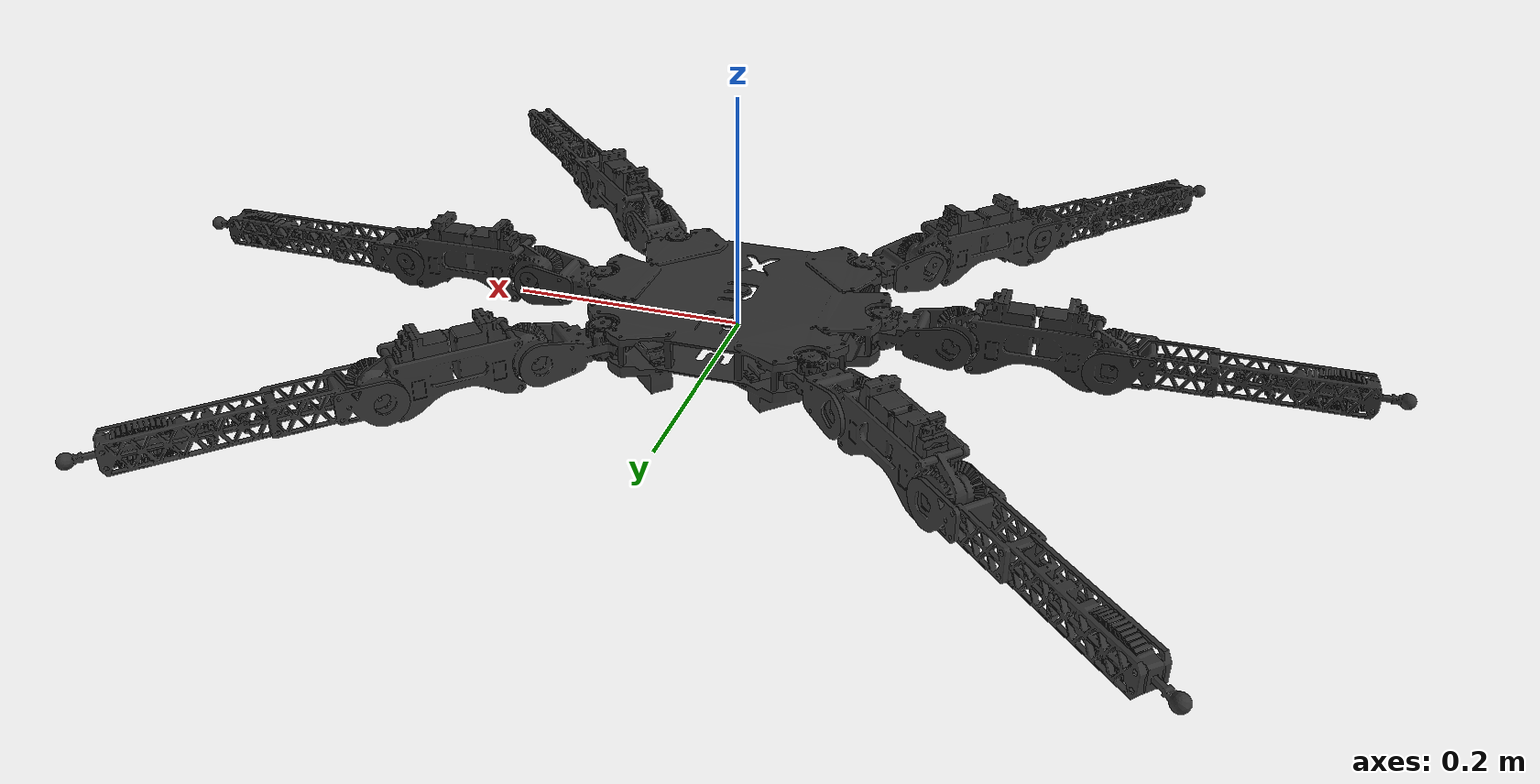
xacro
<?xml version="1.0"?>
<robot name="hexapod" xmlns:xacro="http://ros.org/wiki/xacro">
    <!-- MoveIt configuration for real hardware interface -->
    <!-- This file is optimized for physical robot control -->
    <!-- Used by demo.launch.py when hardware mode is selected -->
    <!-- Default fake_hardware=true allows safe MoveIt testing without real robot -->

    <!-- Robot naming and identification -->
    <xacro:arg name="prefix" default="" />

    <!-- Hardware interface selection for real robot -->
    <xacro:arg name="use_gazebo" default="false" />
    <!-- Default to fake hardware for safe MoveIt algorithm testing -->
    <xacro:arg name="use_fake_hardware" default="true" />
    <xacro:arg name="fake_sensor_commands" default="false" />

    <!-- ESP32 communication parameters for real hardware deployment -->
    <xacro:arg name="port_name" default="/dev/ttyUSB0" />
    <xacro:arg name="baud_rate" default="115200" />

    <!-- Include main hexapod definition from description package -->
    <xacro:include filename="$(find hexapod_description)/urdf/hexapod_ee.urdf.xacro" />

    <!-- Create hexapod robot for MoveIt hardware interface -->
    <xacro:hexapod_ee
        use_sim="true"
        prefix="$(arg prefix)"
        use_gazebo="$(arg use_gazebo)"
        use_fake_hardware="$(arg use_fake_hardware)"
        fake_sensor_commands="$(arg fake_sensor_commands)"
        port_name="$(arg port_name)"
        baud_rate="$(arg baud_rate)" />
</robot>

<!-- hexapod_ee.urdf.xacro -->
<robot name="hexapod" xmlns:xacro="http://ros.org/wiki/xacro">
  <xacro:macro name="hexapod_ee" params="use_sim prefix use_gazebo use_fake_hardware fake_sensor_commands port_name baud_rate">

    <!-- COMPONENT INCLUDES                                                -->
    <!-- Gazebo physics -->
    <xacro:include filename="$(find hexapod_description)/gazebo/hexapod.gazebo.xacro" />

    <!-- Robot structural components (legs, platform, joints) -->
    <xacro:include filename="$(find hexapod_description)/urdf/hexapod_leg_ee.urdf.xacro" />

    <!-- IMU sensor definition (currently unused) -->
    <xacro:include filename="$(find hexapod_description)/urdf/imu.urdf.xacro"/>

    <!-- ros2_control hardware interface configuration -->
    <xacro:include filename="$(find hexapod_description)/control/hexapod.ros2_control.xacro" />

    <!-- ROBOT STRUCTURE INSTANTIATION                                     -->
    <!-- Create complete robot structure with legs and platform -->
    <xacro:hexapod_leg_ee prefix="${prefix}"/>

    <!-- Apply Gazebo physics properties and transmissions -->
    <xacro:hexapod_gazebo prefix="${prefix}" />

    <!-- IMU sensor instantiation (commented out - not currently used) -->

    <!-- GAZEBO SIMULATION PLUGINS                                         -->
    <!-- ros2_control integration plugin for Gazebo -->
    <gazebo>
      <plugin filename="gz_ros2_control-system" name="gz_ros2_control::GazeboSimROS2ControlPlugin">
        <parameters>$(find hexapod_description)/control/controller_manager.yaml</parameters>
      </plugin>
    </gazebo>

    <!-- Touch/contact detection plugin for ground interaction -->
    <gazebo>
      <plugin filename="gz-sim-touchplugin-system"
        name="gz::sim::systems::TouchPlugin">
          <target>ground_plane</target>
          <namespace>tip</namespace>
          <time>0.001</time>
          <enabled>true</enabled>
      </plugin>
    </gazebo>

    <!-- Direct IMU sensor on base platform (alternative to macro) -->
    <gazebo reference="${prefix}base_link">
      <sensor name="imu_sensor" type="imu">
        <update_rate>1</update_rate>
        <always_on>true</always_on>
        <visualize>false</visualize>
        <topic>imu</topic>
      </sensor>
    </gazebo>

    <!-- CONTROL SYSTEM CONFIGURATION                                      -->
    <!-- ros2_control hardware interface with parameter selection -->
    <xacro:hexapod_ros2_control
        name="hexapod"
        initial_positions_file="$(find hexapod_description)/config/initial_positions.yaml"
        use_gazebo="${use_gazebo}"
        use_fake_hardware="${use_fake_hardware}"
        fake_sensor_commands="${fake_sensor_commands}"
        port_name="${port_name}"
        baud_rate="${baud_rate}" />
  </xacro:macro>
</robot>

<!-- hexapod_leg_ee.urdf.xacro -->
<robot xmlns:xacro="http://www.ros.org/wiki/xacro">
  <xacro:macro name="hexapod_leg_ee" params="prefix">

    <!-- PHYSICAL PROPERTIES AND CONSTRAINTS       -->

    <!-- Mass properties for each component -->
    <xacro:property name="platform_mass" value="0.8095" />
    <xacro:property name="up_section_mass" value="0.059" />
    <xacro:property name="mid_section_mass" value="0.1705" />
    <xacro:property name="down_section_mass" value="0.090" />
    <xacro:property name="tip_mass" value="0.001"/>

    <!-- Joint angle limits (radians) -->
    <xacro:property name="joint1_lower" value="-0.785398163"/>
    <xacro:property name="joint1_upper" value="0.785398163"/>
    <xacro:property name="joint2_lower" value="-1.047197551"/>
    <xacro:property name="joint2_upper" value="1.047197551"/>
    <xacro:property name="joint3_lower" value="-0.523598776"/>  <!-- -30° to 90° -->
    <xacro:property name="joint3_upper" value="1.570796327"/>

    <!-- Servo motor specifications -->
    <xacro:property name="joint1_effort" value="2.548"/>      <!-- Nm -->
    <xacro:property name="joint2_effort" value="1.911"/>
    <xacro:property name="joint3_effort" value="1.911"/>

    <xacro:property name="joint1_velocity" value="3.1"/>      <!-- rad/s -->
    <xacro:property name="joint2_velocity" value="4.1"/>
    <xacro:property name="joint3_velocity" value="4.1"/>

    <!-- Platform inertial properties -->
    <xacro:property name="platform_ixx" value="2.782630e-03"/>
    <xacro:property name="platform_ixy" value="3.151174e-07"/>
    <xacro:property name="platform_ixz" value="-3.746570e-07"/>
    <xacro:property name="platform_iyy" value="3.491645e-03"/>
    <xacro:property name="platform_iyz" value="8.425825e-06"/>
    <xacro:property name="platform_izz" value="5.824094e-03"/>

    <!-- End effector inertial properties -->
    <xacro:property name="tip_ixx" value="0.0000000144"/>
    <xacro:property name="tip_iyy" value="0.0000000144"/>
    <xacro:property name="tip_izz" value="0.0000000144"/>
    <xacro:property name="tip_ixy" value="0.0"/>
    <xacro:property name="tip_ixz" value="0.0"/>
    <xacro:property name="tip_iyz" value="0.0"/>

    <!-- LEG 1 - FRONT RIGHT                       -->

    <!-- Joint positions and orientations -->
    <xacro:property name="joint1_1_xyz" value="0.086185	0.0860902	0.0170504"/>
    <xacro:property name="joint1_1_axis" value="0	0	1"/>
    <xacro:property name="joint2_1_xyz" value="0.041059	0.0410588	0.0002496"/>
    <xacro:property name="joint2_1_axis" value="-0.707106781	0.707106781	0"/>
    <xacro:property name="joint3_1_xyz" value="0.085418	0.085419	0"/>
    <xacro:property name="joint3_1_axis" value="-0.707106781	0.707106781	0"/>
    <xacro:property name="joint4_1_xyz" value="0.150968	0.151062	0.004855"/>
    <xacro:property name="joint4_1_axis" value="0	0	0"/>

    <!-- Link visual origins and orientations -->
    <xacro:property name="link2_1_xyz" value="0.0136626	0.0135428	0.0000671"/>
    <xacro:property name="link2_1_rpy" value="0	0	0.7853981634"/>
    <xacro:property name="link3_1_xyz" value="0.04295	0.042401	0.0055591"/>
    <xacro:property name="link3_1_rpy" value="0	0	0.7853981634"/>
    <xacro:property name="link4_1_xyz" value="0.068436	0.068583	0.0042679"/>
    <xacro:property name="link4_1_rpy" value="0	0	0.7853981634"/>
    <xacro:property name="link5_1_xyz" value="0	0	0"/>
    <xacro:property name="link_tip_1_rpy" value="0 0 0.785398163"/>

    <!-- Inertial properties for leg 1 links -->
    <xacro:property name="upper_leg_1_ixx" value="3.192059e-05"/>
    <xacro:property name="upper_leg_1_ixy" value="-1.816964e-05"/>
    <xacro:property name="upper_leg_1_ixz" value="-1.971549e-07"/>
    <xacro:property name="upper_leg_1_iyy" value="3.172578e-05"/>
    <xacro:property name="upper_leg_1_iyz" value="-6.665934e-08"/>
    <xacro:property name="upper_leg_1_izz" value="5.413813e-05"/>

    <xacro:property name="mid_leg_1_ixx" value="1.872470e-04"/>
    <xacro:property name="mid_leg_1_ixy" value="-1.227141e-04"/>
    <xacro:property name="mid_leg_1_ixz" value="4.021989e-08"/>
    <xacro:property name="mid_leg_1_iyy" value="1.872811e-04"/>
    <xacro:property name="mid_leg_1_iyz" value="7.655518e-08"/>
    <xacro:property name="mid_leg_1_izz" value="2.854110e-04"/>

    <xacro:property name="lower_leg_1_ixx" value="1.914881e-04"/>
    <xacro:property name="lower_leg_1_ixy" value="-1.742340e-04"/>
    <xacro:property name="lower_leg_1_ixz" value="-8.359193e-06"/>
    <xacro:property name="lower_leg_1_iyy" value="1.914337e-04"/>
    <xacro:property name="lower_leg_1_iyz" value="-8.346770e-06"/>
    <xacro:property name="lower_leg_1_izz" value="3.656178e-04"/>

    <!-- LEG 2 - FRONT MIDDLE                      -->

    <xacro:property name="joint1_2_xyz" value="0.121845	0	0.0170504"/>
    <xacro:property name="joint1_2_axis" value="0	0	1"/>
    <xacro:property name="joint2_2_xyz" value="0.058105	-0.000094711	0.0002496"/>
    <xacro:property name="joint2_2_axis" value="0	1	0"/>
    <xacro:property name="joint3_2_xyz" value="0.120802	0.000000002	0"/>
    <xacro:property name="joint3_2_axis" value="0	1	0"/>
    <xacro:property name="joint4_2_xyz" value="0.213498	-0.000094709	0.004855"/>
    <xacro:property name="joint4_2_axis" value="0	0	0"/>

    <xacro:property name="link2_2_xyz" value="0.01929	0	0.0001208"/>
    <xacro:property name="link2_2_rpy" value="0	0	0"/>
    <xacro:property name="link3_2_xyz" value="0.060281	0.000094711	0.0055591"/>
    <xacro:property name="link3_2_rpy" value="0	0	0"/>
    <xacro:property name="link4_2_xyz" value="0.096777	0.000131643	0.0042688"/>
    <xacro:property name="link4_2_rpy" value="0	0	0"/>
    <xacro:property name="link5_2_xyz" value="0	0	0"/>
    <xacro:property name="link5_2_rpy" value="0	0	0"/>
    <xacro:property name="link_tip_2_rpy" value="0 0 0"/>

    <xacro:property name="upper_leg_2_ixx" value="1.365355e-05"/>
    <xacro:property name="upper_leg_2_ixy" value="-9.739604e-08"/>
    <xacro:property name="upper_leg_2_ixz" value="-1.865458e-07"/>
    <xacro:property name="upper_leg_2_iyy" value="4.999283e-05"/>
    <xacro:property name="upper_leg_2_iyz" value="9.227452e-08"/>
    <xacro:property name="upper_leg_2_izz" value="5.413814e-05"/>

    <xacro:property name="mid_leg_2_ixx" value="6.454984e-05"/>
    <xacro:property name="mid_leg_2_ixy" value="1.704929e-08"/>
    <xacro:property name="mid_leg_2_ixz" value="8.257522e-08"/>
    <xacro:property name="mid_leg_2_iyy" value="3.099780e-04"/>
    <xacro:property name="mid_leg_2_iyz" value="2.569509e-08"/>
    <xacro:property name="mid_leg_2_izz" value="2.854109e-04"/>

    <xacro:property name="lower_leg_2_ixx" value="1.722692e-05"/>
    <xacro:property name="lower_leg_2_ixy" value="-2.723387e-08"/>
    <xacro:property name="lower_leg_2_ixz" value="-1.181289e-05"/>
    <xacro:property name="lower_leg_2_iyy" value="3.656948e-04"/>
    <xacro:property name="lower_leg_2_iyz" value="8.783736e-09"/>
    <xacro:property name="lower_leg_2_izz" value="3.656178e-04"/>

    <!-- LEG 3 - FRONT LEFT                        -->

    <xacro:property name="joint1_3_xyz" value="0.0861847	-0.0860902	0.0170504"/>
    <xacro:property name="joint1_3_axis" value="0	0	1"/>
    <xacro:property name="joint2_3_xyz" value="0.0410583	-0.0412488	0.0002496"/>
    <xacro:property name="joint2_3_axis" value="0.707106781	0.707106781	0"/>
    <xacro:property name="joint3_3_xyz" value="0.08542	-0.085418	0"/>
    <xacro:property name="joint3_3_axis" value="0.707106781	0.707106781	0"/>
    <xacro:property name="joint4_3_xyz" value="0.150967	-0.150873	0.004855"/>
    <xacro:property name="joint4_3_axis" value="0	0	0"/>

    <xacro:property name="link2_3_xyz" value="0.0136629	-0.0135428	0.0000671"/>
    <xacro:property name="link2_3_rpy" value="0	0	5.497787144"/>
    <xacro:property name="link3_3_xyz" value="0.042951	-0.042211	0.0055591"/>
    <xacro:property name="link3_3_rpy" value="0	0	5.497787144"/>
    <xacro:property name="link4_3_xyz" value="0.068435	-0.068394	0.0042679"/>
    <xacro:property name="link4_3_rpy" value="0	0	5.497787144"/>
    <xacro:property name="link5_3_xyz" value="0	0	0"/>
    <xacro:property name="link5_3_rpy" value="0	0	0"/>
    <xacro:property name="link_tip_3_rpy" value="0 0 5.497787144"/>

    <xacro:property name="upper_leg_3_ixx" value="3.172580e-05"/>
    <xacro:property name="upper_leg_3_ixy" value="1.816965e-05"/>
    <xacro:property name="upper_leg_3_ixz" value="-6.666029e-08"/>
    <xacro:property name="upper_leg_3_iyy" value="3.192058e-05"/>
    <xacro:property name="upper_leg_3_iyz" value="1.971555e-07"/>
    <xacro:property name="upper_leg_3_izz" value="5.413814e-05"/>

    <xacro:property name="mid_leg_3_ixx" value="1.872811e-04"/>
    <xacro:property name="mid_leg_3_ixy" value="1.227142e-04"/>
    <xacro:property name="mid_leg_3_ixz" value="7.655505e-08"/>
    <xacro:property name="mid_leg_3_iyy" value="1.872470e-04"/>
    <xacro:property name="mid_leg_3_iyz" value="-4.021846e-08"/>
    <xacro:property name="mid_leg_3_izz" value="2.854111e-04"/>

    <xacro:property name="lower_leg_3_ixx" value="1.914336e-04"/>
    <xacro:property name="lower_leg_3_ixy" value="1.742339e-04"/>
    <xacro:property name="lower_leg_3_ixz" value="-8.346764e-06"/>
    <xacro:property name="lower_leg_3_iyy" value="1.914880e-04"/>
    <xacro:property name="lower_leg_3_iyz" value="8.359190e-06"/>
    <xacro:property name="lower_leg_3_izz" value="3.656177e-04"/>

    <!-- LEG 4 - REAR LEFT                         -->

    <xacro:property name="joint1_4_xyz" value="-0.0861847	-0.0860902	0.0170504"/>
    <xacro:property name="joint1_4_axis" value="0	0	1"/>
    <xacro:property name="joint2_4_xyz" value="-0.0410583	-0.0412488	0.0002496"/>
    <xacro:property name="joint2_4_axis" value="0.707106781	-0.707106781	0"/>
    <xacro:property name="joint3_4_xyz" value="-0.08542	-0.085418	0"/>
    <xacro:property name="joint3_4_axis" value="0.707106781	-0.707106781	0"/>
    <xacro:property name="joint4_4_xyz" value="-0.150967	-0.150873	0.004855"/>
    <xacro:property name="joint4_4_axis" value="0	0	0"/>

    <xacro:property name="link2_4_xyz" value="-0.0136629	-0.0135428	0.0000671"/>
    <xacro:property name="link2_4_rpy" value="0	0	3.926990817"/>
    <xacro:property name="link3_4_xyz" value="-0.042951	-0.042211	0.0055591"/>
    <xacro:property name="link3_4_rpy" value="0	0	3.926990817"/>
    <xacro:property name="link4_4_xyz" value="-0.068435	-0.068394	0.0042679"/>
    <xacro:property name="link4_4_rpy" value="0	0	3.926990817"/>
    <xacro:property name="link5_4_xyz" value="0	0	0"/>
    <xacro:property name="link5_4_rpy" value="0	0	0"/>
    <xacro:property name="link_tip_4_rpy" value="0 0 3.926990817"/>

    <xacro:property name="upper_leg_4_ixx" value="3.192057e-05"/>
    <xacro:property name="upper_leg_4_ixy" value="-1.816963e-05"/>
    <xacro:property name="upper_leg_4_ixz" value="1.971549e-07"/>
    <xacro:property name="upper_leg_4_iyy" value="3.172578e-05"/>
    <xacro:property name="upper_leg_4_iyz" value="6.665899e-08"/>
    <xacro:property name="upper_leg_4_izz" value="5.413811e-05"/>

    <xacro:property name="mid_leg_4_ixx" value="1.872469e-04"/>
    <xacro:property name="mid_leg_4_ixy" value="-1.227141e-04"/>
    <xacro:property name="mid_leg_4_ixz" value="-4.021828e-08"/>
    <xacro:property name="mid_leg_4_iyy" value="1.872811e-04"/>
    <xacro:property name="mid_leg_4_iyz" value="-7.655551e-08"/>
    <xacro:property name="mid_leg_4_izz" value="2.854110e-04"/>

    <xacro:property name="lower_leg_4_ixx" value="1.914881e-04"/>
    <xacro:property name="lower_leg_4_ixy" value="-1.742340e-04"/>
    <xacro:property name="lower_leg_4_ixz" value="8.359195e-06"/>
    <xacro:property name="lower_leg_4_iyy" value="1.914337e-04"/>
    <xacro:property name="lower_leg_4_iyz" value="8.346770e-06"/>
    <xacro:property name="lower_leg_4_izz" value="3.656178e-04"/>

    <!-- LEG 5 - REAR MIDDLE                       -->

    <xacro:property name="joint1_5_xyz" value="-0.121845	0	0.0170504"/>
    <xacro:property name="joint1_5_axis" value="0	0	1"/>
    <xacro:property name="joint2_5_xyz" value="-0.058105	-0.000094711	0.0002496"/>
    <xacro:property name="joint2_5_axis" value="0	-1	0"/>
    <xacro:property name="joint3_5_xyz" value="-0.120802	0.000000002	0"/>
    <xacro:property name="joint3_5_axis" value="0	-1	0"/>
    <xacro:property name="joint4_5_xyz" value="-0.213498	0.000094709	0.004855"/>
    <xacro:property name="joint4_5_axis" value="0	0	0"/>

    <xacro:property name="link2_5_xyz" value="-0.01929	0	0.0001208"/>
    <xacro:property name="link2_5_rpy" value="0	0	3.141592654"/>
    <xacro:property name="link3_5_xyz" value="-0.060281	0.000094711	0.0055591"/>
    <xacro:property name="link3_5_rpy" value="0	0	3.141592654"/>
    <xacro:property name="link4_5_xyz" value="-0.096777	0.000131643	0.0042688"/>
    <xacro:property name="link4_5_rpy" value="0	0	3.141592654"/>
    <xacro:property name="link5_5_xyz" value="0	0	0"/>
    <xacro:property name="link5_5_rpy" value="0	0	0"/>
    <xacro:property name="link_tip_5_rpy" value="0 0 3.141592654"/>

    <xacro:property name="upper_leg_5_ixx" value="1.365355e-05"/>
    <xacro:property name="upper_leg_5_ixy" value="-9.739963e-08"/>
    <xacro:property name="upper_leg_5_ixz" value="1.865460e-07"/>
    <xacro:property name="upper_leg_5_iyy" value="4.999284e-05"/>
    <xacro:property name="upper_leg_5_iyz" value="-9.227461e-08"/>
    <xacro:property name="upper_leg_5_izz" value="5.413814e-05"/>

    <xacro:property name="mid_leg_5_ixx" value="6.454984e-05"/>
    <xacro:property name="mid_leg_5_ixy" value="1.702660e-08"/>
    <xacro:property name="mid_leg_5_ixz" value="-8.257650e-08"/>
    <xacro:property name="mid_leg_5_iyy" value="3.099780e-04"/>
    <xacro:property name="mid_leg_5_iyz" value="-2.569593e-08"/>
    <xacro:property name="mid_leg_5_izz" value="2.854108e-04"/>

    <xacro:property name="lower_leg_5_ixx" value="1.722692e-05"/>
    <xacro:property name="lower_leg_5_ixy" value="-2.726535e-08"/>
    <xacro:property name="lower_leg_5_ixz" value="1.181289e-05"/>
    <xacro:property name="lower_leg_5_iyy" value="3.656948e-04"/>
    <xacro:property name="lower_leg_5_iyz" value="-8.782921e-09"/>
    <xacro:property name="lower_leg_5_izz" value="3.656178e-04"/>

    <!-- LEG 6 - REAR RIGHT                        -->

    <xacro:property name="joint1_6_xyz" value="-0.0859957	0.0860903	0.0170505"/>
    <xacro:property name="joint1_6_axis" value="0	0	1"/>
    <xacro:property name="joint2_6_xyz" value="-0.0412483	0.0410587	0.0002494"/>
    <xacro:property name="joint2_6_axis" value="-0.707106781	-0.707106781	0"/>
    <xacro:property name="joint3_6_xyz" value="-0.08542	0.085419	0.0000001"/>
    <xacro:property name="joint3_6_axis" value="-0.707106781	-0.707106781	0"/>
    <xacro:property name="joint4_6_xyz" value="-0.150966	0.151062	0.004855"/>
    <xacro:property name="joint4_6_axis" value="0	0	0"/>

    <xacro:property name="link2_6_xyz" value="-0.0138519	0.0135427	0.000067"/>
    <xacro:property name="link2_6_rpy" value="0	0	2.35619449"/>
    <xacro:property name="link3_6_xyz" value="-0.04295	0.042401	0.0055592"/>
    <xacro:property name="link3_6_rpy" value="0	0	2.364921136"/>
    <xacro:property name="link4_6_xyz" value="-0.068434	0.068583	0.0042679"/>
    <xacro:property name="link4_6_rpy" value="0	0	2.35619449"/>
    <xacro:property name="link5_6_xyz" value="0	0	0"/>
    <xacro:property name="link5_6_rpy" value="0	0	0"/>
    <xacro:property name="link_tip_6_rpy" value="0 0 2.35619449"/>

    <xacro:property name="upper_leg_6_ixx" value="3.172579e-05"/>
    <xacro:property name="upper_leg_6_ixy" value="1.816965e-05"/>
    <xacro:property name="upper_leg_6_ixz" value="6.665998e-08"/>
    <xacro:property name="upper_leg_6_iyy" value="3.192060e-05"/>
    <xacro:property name="upper_leg_6_iyz" value="-1.971554e-07"/>
    <xacro:property name="upper_leg_6_izz" value="5.413815e-05"/>

    <xacro:property name="mid_leg_6_ixx" value="1.872811e-04"/>
    <xacro:property name="mid_leg_6_ixy" value="1.227142e-04"/>
    <xacro:property name="mid_leg_6_ixz" value="-7.655812e-08"/>
    <xacro:property name="mid_leg_6_iyy" value="1.872470e-04"/>
    <xacro:property name="mid_leg_6_iyz" value="4.021840e-08"/>
    <xacro:property name="mid_leg_6_izz" value="2.854111e-04"/>

    <xacro:property name="lower_leg_6_ixx" value="1.914336e-04"/>
    <xacro:property name="lower_leg_6_ixy" value="1.742339e-04"/>
    <xacro:property name="lower_leg_6_ixz" value="8.346770e-06"/>
    <xacro:property name="lower_leg_6_iyy" value="1.914881e-04"/>
    <xacro:property name="lower_leg_6_iyz" value="-8.359189e-06"/>
    <xacro:property name="lower_leg_6_izz" value="3.656177e-04"/>

    <!-- MESH AND COLLISION MODEL SETUP            -->

    <!-- Path to 3D mesh files -->
    <xacro:property
        name="meshes_file_direction"
        value="package://hexapod_description/meshes/Version2"/>

    <!-- Include collision model definitions -->
    <xacro:include filename="$(find hexapod_description)/collision/Version2/platform_hitbox.xacro"/>
    <xacro:include filename="$(find hexapod_description)/collision/Version2/up_section_hitbox.xacro"/>
    <xacro:include filename="$(find hexapod_description)/collision/Version2/mid_section_hitbox.xacro"/>
    <xacro:include filename="$(find hexapod_description)/collision/Version2/down_section_hitbox.xacro"/>
    <xacro:include filename="$(find hexapod_description)/collision/Version2/tip_hitbox.xacro"/>

    <!-- MACRO DEFINITIONS                          -->

    <!-- Platform/Base macro -->
    <xacro:macro name="platform_base" params="prefix ixx ixy ixz iyy iyz izz">
      <link name="${prefix}base_link">
        <visual>
          <origin xyz="0.00001	0.003706	0.007688" rpy="0 0 0"/>
          <geometry>
            <mesh filename="${meshes_file_direction}/platform.stl" scale="1 1 1"/>
          </geometry>
          <material name="gray">
            <color rgba="0.2 0.2 0.2 1"/>
          </material>
        </visual>

        <!-- Collision model using simplified shapes -->
        <xacro:platform_collision prefix="${prefix}" />
        <inertial>
          <origin xyz="0.00001	0.003706	0.007688" rpy="0 0 0"/>
          <mass value="${platform_mass}"/>
          <inertia
            ixx="${ixx}" ixy="${ixy}" ixz="${ixz}"
            iyy="${iyy}" iyz="${iyz}"
            izz="${izz}"/>
        </inertial>
      </link>
    </xacro:macro>

    <!-- Joint macro -->
    <xacro:macro name="leg_joint" params="prefix joint_name parent_link child_link xyz axis lower upper effort velocity">
      <joint name="${joint_name}" type="revolute">
        <parent link="${parent_link}"/>
        <child link="${child_link}"/>
        <origin xyz="${xyz}" rpy="0 0 0"/>
        <axis xyz="${axis}"/>
        <limit effort="${effort}" velocity="${velocity}" lower="${lower}" upper="${upper}"/>
        <dynamics damping="0.1"/>
      </joint>
    </xacro:macro>

    <!-- Upper leg segment macro -->
    <xacro:macro name="upper_leg" params="prefix index xyz rpy ixx ixy ixz iyy iyz izz">
      <link name="${prefix}link2_${index}">
        <visual>
          <origin xyz="${xyz}" rpy="${rpy}"/>
          <geometry>
            <mesh filename="${meshes_file_direction}/leg_up.stl" scale="1.0 1.0 1.0"/>
          </geometry>
          <material name="grey">
            <color rgba="0.2 0.2 0.2 1"/>
          </material>
        </visual>

        <!-- Collision model -->
        <xacro:upper_leg_collision prefix="${prefix}" position="${xyz}" rotation="${rpy}"/>
        <inertial>
          <origin xyz="${xyz}" rpy="0.0 0.0 0.0"/>
          <mass value="${up_section_mass}"/>
          <inertia ixx="${ixx}" ixy="${ixy}" ixz="${ixz}" iyy="${iyy}" iyz="${iyz}" izz="${izz}"/>
        </inertial>
      </link>
    </xacro:macro>

    <!-- Middle leg segment macro -->
    <xacro:macro name="mid_leg" params="prefix index xyz rpy ixx ixy ixz iyy iyz izz">
      <link name="${prefix}link3_${index}">
        <visual>
          <origin xyz="${xyz}" rpy="${rpy}"/>
          <geometry>
            <mesh filename="${meshes_file_direction}/leg_mid.stl" scale="1.0 1.0 1.0"/>
          </geometry>
          <material name="grey">
            <color rgba="0.2 0.2 0.2 1"/>
          </material>
        </visual>
        <xacro:mid_leg_collision prefix="${prefix}" position="${xyz}" rotation="${rpy}"/>
        <inertial>
          <origin xyz="${xyz}" rpy="${rpy}"/>
          <mass value="${mid_section_mass}"/>
          <inertia ixx="${ixx}" ixy="${ixy}" ixz="${ixz}" iyy="${iyy}" iyz="${iyz}" izz="${izz}"/>
        </inertial>
      </link>
    </xacro:macro>

    <!-- Lower leg segment macro -->
    <xacro:macro name="lower_leg" params="prefix index xyz rpy ixx ixy ixz iyy iyz izz">
      <link name="${prefix}link4_${index}">
        <visual>
          <origin xyz="${xyz}" rpy="${rpy}"/>
          <geometry>
            <mesh filename="${meshes_file_direction}/leg_down.stl" scale="1.0 1.0 1.0"/>
          </geometry>
          <material name="grey">
            <color rgba="0.2 0.2 0.2 1"/>
          </material>
        </visual>
        <xacro:lower_leg_collision prefix="${prefix}" position="${xyz}" rotation="${rpy}"/>
        <inertial>
          <origin xyz="${xyz}" rpy="${rpy}"/>
          <mass value="${down_section_mass}"/>
          <inertia ixx="${ixx}" ixy="${ixy}" ixz="${ixz}" iyy="${iyy}" iyz="${iyz}" izz="${izz}"/>
        </inertial>
      </link>
    </xacro:macro>

    <!-- End effector joint macro -->
    <xacro:macro name="end_effector_joint" params="prefix index xyz rpy">
      <joint name="${prefix}joint4_${index}" type="fixed">
        <parent link="${prefix}link4_${index}"/>
        <child link="${prefix}link5_${index}"/>
        <origin xyz="${xyz}" rpy="${rpy}"/>
      </joint>
    </xacro:macro>

    <!-- End effector link macro -->
    <xacro:macro name="end_effector_link" params="prefix index rpy">
      <link name="${prefix}link5_${index}">
        <xacro:tip_collision prefix="${prefix}" rotation="${rpy}"/>
        <inertial>
        <origin xyz="0 0 0" rpy="0 0 0"/>
        <mass value="${tip_mass}"/>
        <inertia
          ixx="${tip_ixx}" ixy="${tip_ixy}" ixz="${tip_ixz}"
          iyy="${tip_iyy}" iyz="${tip_iyz}"
          izz="${tip_izz}"/>
      </inertial>
      <visual>
        <origin xyz="0 0 0" rpy="0 0 0"/>
        <geometry>
          <sphere radius="0.005"/>
        </geometry>
        <material name="grey">
          <color rgba="0.2 0.2 0.2 1"/>
        </material>
      </visual>
      </link>
    </xacro:macro>

    <!-- MAIN HEXAPOD ASSEMBLY                     -->

    <xacro:macro name="hexapod" params="prefix">
        <!-- Create base platform -->
      <xacro:platform_base
        prefix="${prefix}"
        ixx="${platform_ixx}"
        ixy="${platform_ixy}"
        ixz="${platform_ixz}"
        iyy="${platform_iyy}"
        iyz="${platform_iyz}"
        izz="${platform_izz}"/>

      <!-- LEG 1 Assembly -->
      <xacro:leg_joint
        prefix="${prefix}"
        joint_name="${prefix}joint1_1"
        parent_link="${prefix}base_link"
        child_link="${prefix}link2_1"
        xyz="${joint1_1_xyz}"
        axis="${joint1_1_axis}"
        lower="${joint1_lower}"
        upper="${joint1_upper}"
        effort="${joint1_effort}"
        velocity="${joint1_velocity}"/>
      <xacro:upper_leg
        prefix="${prefix}"
        index="1"
        xyz="${link2_1_xyz}"
        rpy="${link2_1_rpy}"
        ixx="${upper_leg_1_ixx}"
        ixy="${upper_leg_1_ixy}"
        ixz="${upper_leg_1_ixz}"
        iyy="${upper_leg_1_iyy}"
        iyz="${upper_leg_1_iyz}"
        izz="${upper_leg_1_izz}"/>

      <xacro:leg_joint
        prefix="${prefix}"
        joint_name="${prefix}joint2_1"
        parent_link="${prefix}link2_1"
        child_link="${prefix}link3_1"
        xyz="${joint2_1_xyz}"
        axis="${joint2_1_axis}"
        lower="${joint2_lower}"
        upper="${joint2_upper}"
        effort="${joint2_effort}"
        velocity="${joint2_velocity}"/>
      <xacro:mid_leg
        prefix="${prefix}"
        index="1"
        xyz="${link3_1_xyz}"
        rpy="${link3_1_rpy}"
        ixx="${mid_leg_1_ixx}"
        ixy="${mid_leg_1_ixy}"
        ixz="${mid_leg_1_ixz}"
        iyy="${mid_leg_1_iyy}"
        iyz="${mid_leg_1_iyz}"
        izz="${mid_leg_1_izz}"/>

      <xacro:leg_joint
        prefix="${prefix}"
        joint_name="${prefix}joint3_1"
        parent_link="${prefix}link3_1"
        child_link="${prefix}link4_1"
        xyz="${joint3_1_xyz}"
        axis="${joint3_1_axis}"
        lower="${joint3_lower}"
        upper="${joint3_upper}"
        effort="${joint3_effort}"
        velocity="${joint3_velocity}"/>
      <xacro:lower_leg
        prefix="${prefix}"
        index="1"
        xyz="${link4_1_xyz}"
        rpy="${link4_1_rpy}"
        ixx="${lower_leg_1_ixx}"
        ixy="${lower_leg_1_ixy}"
        ixz="${lower_leg_1_ixz}"
        iyy="${lower_leg_1_iyy}"
        iyz="${lower_leg_1_iyz}"
        izz="${lower_leg_1_izz}"/>

      <xacro:end_effector_joint prefix="${prefix}" index="1" xyz="${joint4_1_xyz}" rpy="${joint4_1_axis}"/>
      <xacro:end_effector_link prefix="${prefix}" index="1" rpy="${link_tip_1_rpy}"/>

      <!-- LEG 2 Assembly -->
      <xacro:leg_joint
        prefix="${prefix}"
        joint_name="${prefix}joint1_2"
        parent_link="${prefix}base_link"
        child_link="${prefix}link2_2"
        xyz="${joint1_2_xyz}"
        axis="${joint1_2_axis}"
        lower="${joint1_lower}"
        upper="${joint1_upper}"
        effort="${joint1_effort}"
        velocity="${joint1_velocity}"/>
      <xacro:upper_leg
        prefix="${prefix}"
        index="2"
        xyz="${link2_2_xyz}"
        rpy="${link2_2_rpy}"
        ixx="${upper_leg_2_ixx}"
        ixy="${upper_leg_2_ixy}"
        ixz="${upper_leg_2_ixz}"
        iyy="${upper_leg_2_iyy}"
        iyz="${upper_leg_2_iyz}"
        izz="${upper_leg_2_izz}"/>

      <xacro:leg_joint
        prefix="${prefix}"
        joint_name="${prefix}joint2_2"
        parent_link="${prefix}link2_2"
        child_link="${prefix}link3_2"
        xyz="${joint2_2_xyz}"
        axis="${joint2_2_axis}"
        lower="${joint2_lower}"
        upper="${joint2_upper}"
        effort="${joint2_effort}"
        velocity="${joint2_velocity}"/>
      <xacro:mid_leg
        prefix="${prefix}"
        index="2"
        xyz="${link3_2_xyz}"
        rpy="${link3_2_rpy}"
        ixx="${mid_leg_2_ixx}"
        ixy="${mid_leg_2_ixy}"
        ixz="${mid_leg_2_ixz}"
        iyy="${mid_leg_2_iyy}"
        iyz="${mid_leg_2_iyz}"
        izz="${mid_leg_2_izz}"/>

      <xacro:leg_joint
        prefix="${prefix}"
        joint_name="${prefix}joint3_2"
        parent_link="${prefix}link3_2"
        child_link="${prefix}link4_2"
        xyz="${joint3_2_xyz}"
        axis="${joint3_2_axis}"
        lower="${joint3_lower}"
        upper="${joint3_upper}"
        effort="${joint3_effort}"
        velocity="${joint3_velocity}"/>
      <xacro:lower_leg
        prefix="${prefix}"
        index="2"
        xyz="${link4_2_xyz}"
        rpy="${link4_2_rpy}"
        ixx="${lower_leg_2_ixx}"
        ixy="${lower_leg_2_ixy}"
        ixz="${lower_leg_2_ixz}"
        iyy="${lower_leg_2_iyy}"
        iyz="${lower_leg_2_iyz}"
        izz="${lower_leg_2_izz}"/>

      <xacro:end_effector_joint prefix="${prefix}" index="2" xyz="${joint4_2_xyz}" rpy="${joint4_2_axis}"/>
      <xacro:end_effector_link prefix="${prefix}" index="2" rpy="${link_tip_2_rpy}"/>

      <!-- LEG 3 Assembly -->
      <xacro:leg_joint
        prefix="${prefix}"
        joint_name="${prefix}joint1_3"
        parent_link="${prefix}base_link"
        child_link="${prefix}link2_3"
        xyz="${joint1_3_xyz}"
        axis="${joint1_3_axis}"
        lower="${joint1_lower}"
        upper="${joint1_upper}"
        effort="${joint1_effort}"
        velocity="${joint1_velocity}"/>
      <xacro:upper_leg
        prefix="${prefix}"
        index="3"
        xyz="${link2_3_xyz}"
        rpy="${link2_3_rpy}"
        ixx="${upper_leg_3_ixx}"
        ixy="${upper_leg_3_ixy}"
        ixz="${upper_leg_3_ixz}"
        iyy="${upper_leg_3_iyy}"
        iyz="${upper_leg_3_iyz}"
        izz="${upper_leg_3_izz}"/>

      <xacro:leg_joint
        prefix="${prefix}"
        joint_name="${prefix}joint2_3"
        parent_link="${prefix}link2_3"
        child_link="${prefix}link3_3"
        xyz="${joint2_3_xyz}"
        axis="${joint2_3_axis}"
        lower="${joint2_lower}"
        upper="${joint2_upper}"
        effort="${joint2_effort}"
        velocity="${joint2_velocity}"/>
      <xacro:mid_leg
        prefix="${prefix}"
        index="3"
        xyz="${link3_3_xyz}"
        rpy="${link3_3_rpy}"
        ixx="${mid_leg_3_ixx}"
        ixy="${mid_leg_3_ixy}"
        ixz="${mid_leg_3_ixz}"
        iyy="${mid_leg_3_iyy}"
        iyz="${mid_leg_3_iyz}"
        izz="${mid_leg_3_izz}"/>

      <xacro:leg_joint
        prefix="${prefix}"
        joint_name="${prefix}joint3_3"
        parent_link="${prefix}link3_3"
        child_link="${prefix}link4_3"
        xyz="${joint3_3_xyz}"
        axis="${joint3_3_axis}"
        lower="${joint3_lower}"
        upper="${joint3_upper}"
        effort="${joint3_effort}"
        velocity="${joint3_velocity}"/>
      <xacro:lower_leg
        prefix="${prefix}"
        index="3"
        xyz="${link4_3_xyz}"
        rpy="${link4_3_rpy}"
        ixx="${lower_leg_3_ixx}"
        ixy="${lower_leg_3_ixy}"
        ixz="${lower_leg_3_ixz}"
        iyy="${lower_leg_3_iyy}"
        iyz="${lower_leg_3_iyz}"
        izz="${lower_leg_3_izz}"/>

      <xacro:end_effector_joint prefix="${prefix}" index="3" xyz="${joint4_3_xyz}" rpy="${joint4_3_axis}"/>
      <xacro:end_effector_link prefix="${prefix}" index="3" rpy="${link_tip_3_rpy}"/>

      <!-- LEG 4 Assembly -->
      <xacro:leg_joint
        prefix="${prefix}"
        joint_name="${prefix}joint1_4"
        parent_link="${prefix}base_link"
        child_link="${prefix}link2_4"
        xyz="${joint1_4_xyz}"
        axis="${joint1_4_axis}"
        lower="${joint1_lower}"
        upper="${joint1_upper}"
        effort="${joint1_effort}"
        velocity="${joint1_velocity}"/>
      <xacro:upper_leg
        prefix="${prefix}"
        index="4"
        xyz="${link2_4_xyz}"
        rpy="${link2_4_rpy}"
        ixx="${upper_leg_4_ixx}"
        ixy="${upper_leg_4_ixy}"
        ixz="${upper_leg_4_ixz}"
        iyy="${upper_leg_4_iyy}"
        iyz="${upper_leg_4_iyz}"
        izz="${upper_leg_4_izz}"/>

      <xacro:leg_joint
        prefix="${prefix}"
        joint_name="${prefix}joint2_4"
        parent_link="${prefix}link2_4"
        child_link="${prefix}link3_4"
        xyz="${joint2_4_xyz}"
        axis="${joint2_4_axis}"
        lower="${joint2_lower}"
        upper="${joint2_upper}"
        effort="${joint2_effort}"
        velocity="${joint2_velocity}"/>
      <xacro:mid_leg
        prefix="${prefix}"
        index="4"
        xyz="${link3_4_xyz}"
        rpy="${link3_4_rpy}"
        ixx="${mid_leg_4_ixx}"
        ixy="${mid_leg_4_ixy}"
        ixz="${mid_leg_4_ixz}"
        iyy="${mid_leg_4_iyy}"
        iyz="${mid_leg_4_iyz}"
        izz="${mid_leg_4_izz}"/>

      <xacro:leg_joint
        prefix="${prefix}"
        joint_name="${prefix}joint3_4"
        parent_link="${prefix}link3_4"
        child_link="${prefix}link4_4"
        xyz="${joint3_4_xyz}"
        axis="${joint3_4_axis}"
        lower="${joint3_lower}"
        upper="${joint3_upper}"
        effort="${joint3_effort}"
        velocity="${joint3_velocity}"/>
      <xacro:lower_leg
        prefix="${prefix}"
        index="4"
        xyz="${link4_4_xyz}"
        rpy="${link4_4_rpy}"
        ixx="${lower_leg_4_ixx}"
        ixy="${lower_leg_4_ixy}"
        ixz="${lower_leg_4_ixz}"
        iyy="${lower_leg_4_iyy}"
        iyz="${lower_leg_4_iyz}"
        izz="${lower_leg_4_izz}"/>

      <xacro:end_effector_joint prefix="${prefix}" index="4" xyz="${joint4_4_xyz}" rpy="${joint4_4_axis}"/>
      <xacro:end_effector_link prefix="${prefix}" index="4" rpy="${link_tip_4_rpy}"/>

      <!-- LEG 5 Assembly -->
      <xacro:leg_joint
        prefix="${prefix}"
        joint_name="${prefix}joint1_5"
        parent_link="${prefix}base_link"
        child_link="${prefix}link2_5"
        xyz="${joint1_5_xyz}"
        axis="${joint1_5_axis}"
        lower="${joint1_lower}"
        upper="${joint1_upper}"
        effort="${joint1_effort}"
        velocity="${joint1_velocity}"/>
      <xacro:upper_leg
        prefix="${prefix}"
        index="5"
        xyz="${link2_5_xyz}"
        rpy="${link2_5_rpy}"
        ixx="${upper_leg_5_ixx}"
        ixy="${upper_leg_5_ixy}"
        ixz="${upper_leg_5_ixz}"
        iyy="${upper_leg_5_iyy}"
        iyz="${upper_leg_5_iyz}"
        izz="${upper_leg_5_izz}"/>

      <xacro:leg_joint
        prefix="${prefix}"
        joint_name="${prefix}joint2_5"
        parent_link="${prefix}link2_5"
        child_link="${prefix}link3_5"
        xyz="${joint2_5_xyz}"
        axis="${joint2_5_axis}"
        lower="${joint2_lower}"
        upper="${joint2_upper}"
        effort="${joint2_effort}"
        velocity="${joint2_velocity}"/>
      <xacro:mid_leg
        prefix="${prefix}"
        index="5"
        xyz="${link3_5_xyz}"
        rpy="${link3_5_rpy}"
        ixx="${mid_leg_5_ixx}"
        ixy="${mid_leg_5_ixy}"
        ixz="${mid_leg_5_ixz}"
        iyy="${mid_leg_5_iyy}"
        iyz="${mid_leg_5_iyz}"
        izz="${mid_leg_5_izz}"/>

      <xacro:leg_joint
        prefix="${prefix}"
        joint_name="${prefix}joint3_5"
        parent_link="${prefix}link3_5"
        child_link="${prefix}link4_5"
        xyz="${joint3_5_xyz}"
        axis="${joint3_5_axis}"
        lower="${joint3_lower}"
        upper="${joint3_upper}"
        effort="${joint3_effort}"
        velocity="${joint3_velocity}"/>
      <xacro:lower_leg
        prefix="${prefix}"
        index="5"
        xyz="${link4_5_xyz}"
        rpy="${link4_5_rpy}"
        ixx="${lower_leg_5_ixx}"
        ixy="${lower_leg_5_ixy}"
        ixz="${lower_leg_5_ixz}"
        iyy="${lower_leg_5_iyy}"
        iyz="${lower_leg_5_iyz}"
        izz="${lower_leg_5_izz}"/>

      <xacro:end_effector_joint prefix="${prefix}" index="5" xyz="${joint4_5_xyz}" rpy="${joint4_5_axis}"/>
      <xacro:end_effector_link prefix="${prefix}" index="5" rpy="${link_tip_5_rpy}"/>

      <!-- LEG 6 Assembly -->
      <xacro:leg_joint
        prefix="${prefix}"
        joint_name="${prefix}joint1_6"
        parent_link="${prefix}base_link"
        child_link="${prefix}link2_6"
        xyz="${joint1_6_xyz}"
        axis="${joint1_6_axis}"
        lower="${joint1_lower}"
        upper="${joint1_upper}"
        effort="${joint1_effort}"
        velocity="${joint1_velocity}"/>
      <xacro:upper_leg
        prefix="${prefix}"
        index="6"
        xyz="${link2_6_xyz}"
        rpy="${link2_6_rpy}"
        ixx="${upper_leg_6_ixx}"
        ixy="${upper_leg_6_ixy}"
        ixz="${upper_leg_6_ixz}"
        iyy="${upper_leg_6_iyy}"
        iyz="${upper_leg_6_iyz}"
        izz="${upper_leg_6_izz}"/>

      <xacro:leg_joint
        prefix="${prefix}"
        joint_name="${prefix}joint2_6"
        parent_link="${prefix}link2_6"
        child_link="${prefix}link3_6"
        xyz="${joint2_6_xyz}"
        axis="${joint2_6_axis}"
        lower="${joint2_lower}"
        upper="${joint2_upper}"
        effort="${joint2_effort}"
        velocity="${joint2_velocity}"/>
      <xacro:mid_leg
        prefix="${prefix}"
        index="6"
        xyz="${link3_6_xyz}"
        rpy="${link3_6_rpy}"
        ixx="${mid_leg_6_ixx}"
        ixy="${mid_leg_6_ixy}"
        ixz="${mid_leg_6_ixz}"
        iyy="${mid_leg_6_iyy}"
        iyz="${mid_leg_6_iyz}"
        izz="${mid_leg_6_izz}"/>

      <xacro:leg_joint
        prefix="${prefix}"
        joint_name="${prefix}joint3_6"
        parent_link="${prefix}link3_6"
        child_link="${prefix}link4_6"
        xyz="${joint3_6_xyz}"
        axis="${joint3_6_axis}"
        lower="${joint3_lower}"
        upper="${joint3_upper}"
        effort="${joint3_effort}"
        velocity="${joint3_velocity}"/>
      <xacro:lower_leg
        prefix="${prefix}"
        index="6"
        xyz="${link4_6_xyz}"
        rpy="${link4_6_rpy}"
        ixx="${lower_leg_6_ixx}"
        ixy="${lower_leg_6_ixy}"
        ixz="${lower_leg_6_ixz}"
        iyy="${lower_leg_6_iyy}"
        iyz="${lower_leg_6_iyz}"
        izz="${lower_leg_6_izz}"/>

      <xacro:end_effector_joint prefix="${prefix}" index="6" xyz="${joint4_6_xyz}" rpy="${joint4_6_axis}"/>
      <xacro:end_effector_link prefix="${prefix}" index="6" rpy="${link_tip_6_rpy}"/>

    </xacro:macro>

    <!-- Instantiate the complete hexapod -->
    <xacro:hexapod prefix="${prefix}"/>

  </xacro:macro>

</robot>

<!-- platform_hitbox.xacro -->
<robot xmlns:xacro="http://www.ros.org/wiki/xacro">
    <!-- Collision model macro for main platform using multiple primitive geometric shapes -->
    <xacro:macro name="platform_collision" params="prefix">

        <!-- Central platform structural elements -->
        <collision>
            <origin xyz="0 0 0.0161" rpy="0.00000 0.00000 0.00000"/>
            <geometry>
                <box size="0.07820 0.19000 0.0288"/>
            </geometry>
        </collision>

        <!-- Diagonal corner reinforcements -->
        <collision>
            <origin xyz="0.04104 0.04082 0.0161" rpy="0.00000 0.00000 0.78540"/>
            <geometry>
                <box size="0.07320 0.08000 0.0288"/>
            </geometry>
        </collision>

        <collision>
            <origin xyz="0.04104 -0.04082 0.0161" rpy="0.00000 0.00000 -0.78540"/>
            <geometry>
                <box size="0.07320 0.08000 0.0288"/>
            </geometry>
        </collision>

        <collision>
            <origin xyz="-0.04104 0.04082 0.0161" rpy="0.00000 0.00000 -0.78540"/>
            <geometry>
                <box size="0.07320 0.08000 0.0288"/>
            </geometry>
        </collision>

        <collision>
            <origin xyz="-0.04104 -0.04082 0.0161" rpy="0.00000 0.00000 0.78540"/>
            <geometry>
                <box size="0.07320 0.08000 0.0288"/>
            </geometry>
        </collision>

        <!-- Secondary structural layers -->
        <collision>
            <origin xyz="0 0 0.01556" rpy="0.00000 0.00000 0.00000"/>
            <geometry>
                <box size="0.07820 0.19000 0.0288"/>
            </geometry>
        </collision>

        <!-- Peripheral mounting elements -->
        <collision>
            <origin xyz="-0.08452 0.00975 -0.00693" rpy="0.00000 0.00000 1.57080"/>
            <geometry>
                <box size="0.04060 0.02100 0.03880"/>
            </geometry>
        </collision>

        <collision>
            <origin xyz="-0.05269 0.06718 -0.00693" rpy="0.00000 0.00000 0.78540"/>
            <geometry>
                <box size="0.04060 0.02100 0.03880"/>
            </geometry>
        </collision>

        <collision>
            <origin xyz="0.05269 0.06718 -0.00693" rpy="0.00000 0.00000 -0.78540"/>
            <geometry>
                <box size="0.04060 0.02100 0.03880"/>
            </geometry>
        </collision>

        <collision>
            <origin xyz="-0.06759 -0.05244 -0.00693" rpy="0.00000 0.00000 -0.78540"/>
            <geometry>
                <box size="0.04060 0.02100 0.03880"/>
            </geometry>
        </collision>

        <collision>
            <origin xyz="0.06759 -0.05244 -0.00693" rpy="0.00000 0.00000 0.78540"/>
            <geometry>
                <box size="0.04060 0.02100 0.03880"/>
            </geometry>
        </collision>

        <collision>
            <origin xyz="0.08452 0.00975 -0.00693" rpy="0.00000 0.00000 1.57080"/>
            <geometry>
                <box size="0.04060 0.02100 0.03880"/>
            </geometry>
        </collision>

        <collision>
            <origin xyz="0 0 0.0161" rpy="0.00000 0.00000 1.57080"/>
            <geometry>
                <box size="0.07820 0.19000 0.0288"/>
            </geometry>
        </collision>

        <!-- Extended platform elements -->
        <collision>
            <origin xyz="-0.07305 -0.06865 0.0161" rpy="0.00000 0.00000 0.7853981634"/>
            <geometry>
                <box size="0.0502 0.0724 0.0344"/>
            </geometry>
        </collision>

        <collision>
            <origin xyz="-0.06843 0.07413 0.0161" rpy="0.00000 0.00000 -0.7853981634"/>
            <geometry>
                <box size="0.0502 0.0758 0.0344"/>
            </geometry>
        </collision>

        <collision>
            <origin xyz="0.06843 0.07413 0.0161" rpy="0.00000 0.00000 3.926990817"/>
            <geometry>
                <box size="0.0502 0.0758 0.0344"/>
            </geometry>
        </collision>

        <collision>
            <origin xyz="0.09828 0.0053 0.0161" rpy="0.00000 0.00000 1.570796327"/>
            <geometry>
                <box size="0.0772 0.0536 0.0344"/>
            </geometry>
        </collision>

        <collision>
            <origin xyz="-0.09828 0.0053 0.0161" rpy="0.00000 0.00000 1.570796327"/>
            <geometry>
                <box size="0.0772 0.0536 0.0344"/>
            </geometry>
        </collision>

        <collision>
            <origin xyz="0.07305 -0.06865 0.0161" rpy="0.00000 0.00000 2.35619449"/>
            <geometry>
                <box size="0.0772 0.0536 0.0344"/>
            </geometry>
        </collision>

        <!-- Cylindrical connection elements -->
        <collision>
            <origin xyz="0.08600 -0.08607 0.01708" rpy="0.00000 0.00000 0.00000"/>
            <geometry>
                <cylinder radius="0.014" length="0.0278"/>
            </geometry>
        </collision>

        <collision>
            <origin xyz="-0.08600 -0.08607 0.01708" rpy="0.00000 0.00000 0.00000"/>
            <geometry>
                <cylinder radius="0.014" length="0.0278"/>
            </geometry>
        </collision>

        <collision>
            <origin xyz="0.08600 0.08607 0.01708" rpy="0.00000 0.00000 0.00000"/>
            <geometry>
                <cylinder radius="0.014" length="0.0278"/>
            </geometry>
        </collision>

        <collision>
            <origin xyz="-0.08600 0.08607 0.01708" rpy="0.00000 0.00000 0.00000"/>
            <geometry>
                <cylinder radius="0.014" length="0.0278"/>
            </geometry>
        </collision>

        <collision>
            <origin xyz="0.12206 0.00017 0.01708" rpy="0.00000 0.00000 0.00000"/>
            <geometry>
                <cylinder radius="0.014" length="0.0278"/>
            </geometry>
        </collision>

        <collision>
            <origin xyz="-0.12206 0.00017 0.01708" rpy="0.00000 0.00000 0.00000"/>
            <geometry>
                <cylinder radius="0.014" length="0.0278"/>
            </geometry>
        </collision>

    </xacro:macro>
</robot>

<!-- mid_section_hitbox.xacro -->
<robot xmlns:xacro="http://www.ros.org/wiki/xacro">
    <!-- Collision model macro for middle leg segment using primitive geometric shapes -->
    <xacro:macro name="mid_leg_collision" params="prefix position rotation">
        <!-- Parse input position string into individual coordinate components -->
        <xacro:property name="pos_parts" value="${position.split(' ')}"/>
        <xacro:property name="center_x" value="${pos_parts[0]}"/>
        <xacro:property name="center_y" value="${pos_parts[1]}"/>
        <xacro:property name="center_z" value="${pos_parts[2]}"/>

        <!-- Parse input rotation string into individual angle components -->
        <xacro:property name="rot_parts" value="${rotation.split(' ')}"/>
        <xacro:property name="roll" value="${rot_parts[0]}"/>
        <xacro:property name="pitch" value="${rot_parts[1]}"/>
        <xacro:property name="yaw" value="${rot_parts[2]}"/>

        <!-- Collision shape definitions for femur segment components -->

        <!-- Main body segment - central structural element -->
        <xacro:property name="cube_0_size_x" value="0.104800"/>
        <xacro:property name="cube_0_size_y" value="0.039400"/>
        <xacro:property name="cube_0_size_z" value="0.062800"/>
        <xacro:property name="cube_0_offset_x" value="-0.000123"/>
        <xacro:property name="cube_0_offset_y" value="0.000023"/>
        <xacro:property name="cube_0_offset_z" value="0.001713"/>
        <xacro:property name="cube_0_roll" value="0.000000"/>
        <xacro:property name="cube_0_pitch" value="0.000000"/>
        <xacro:property name="cube_0_yaw" value="0.000000"/>

        <!-- Proximal joint connection - coxa interface -->
        <xacro:property name="cylinder_0_radius" value="0.019300"/>
        <xacro:property name="cylinder_0_length" value="0.040000"/>
        <xacro:property name="cylinder_0_offset_x" value="-0.060781"/>
        <xacro:property name="cylinder_0_offset_y" value="0.000023"/>
        <xacro:property name="cylinder_0_offset_z" value="-0.005517"/>
        <xacro:property name="cylinder_0_roll" value="1.570796"/>
        <xacro:property name="cylinder_0_pitch" value="0.000000"/>
        <xacro:property name="cylinder_0_yaw" value="0.000000"/>

        <!-- Distal joint connection - tibia interface -->
        <xacro:property name="cylinder_1_radius" value="0.019300"/>
        <xacro:property name="cylinder_1_length" value="0.040000"/>
        <xacro:property name="cylinder_1_offset_x" value="0.060169"/>
        <xacro:property name="cylinder_1_offset_y" value="0.000023"/>
        <xacro:property name="cylinder_1_offset_z" value="-0.005517"/>
        <xacro:property name="cylinder_1_roll" value="1.570796"/>
        <xacro:property name="cylinder_1_pitch" value="0.000000"/>
        <xacro:property name="cylinder_1_yaw" value="0.000000"/>

        <!-- Rotation matrix calculation for 3D coordinate transformation -->
        <xacro:property name="cr" value="${cos(roll)}"/>
        <xacro:property name="sr" value="${sin(roll)}"/>
        <xacro:property name="cp" value="${cos(pitch)}"/>
        <xacro:property name="sp" value="${sin(pitch)}"/>
        <xacro:property name="cy" value="${cos(yaw)}"/>
        <xacro:property name="sy" value="${sin(yaw)}"/>

        <!-- Rotation matrix elements for Rx * Ry * Rz transformation -->
        <!-- First row - X-axis transformation components -->
        <xacro:property name="r11" value="${cy * cp}"/>
        <xacro:property name="r12" value="${cy * sp * sr - sy * cr}"/>
        <xacro:property name="r13" value="${cy * sp * cr + sy * sr}"/>

        <!-- Second row - Y-axis transformation components -->
        <xacro:property name="r21" value="${sy * cp}"/>
        <xacro:property name="r22" value="${sy * sp * sr + cy * cr}"/>
        <xacro:property name="r23" value="${sy * sp * cr - cy * sr}"/>

        <!-- Third row - Z-axis transformation components -->
        <xacro:property name="r31" value="${-sp}"/>
        <xacro:property name="r32" value="${cp * sr}"/>
        <xacro:property name="r33" value="${cp * cr}"/>

        <!-- Transform local shape positions to global coordinate system -->

        <!-- Main body segment transformation -->
        <xacro:property name="cube_0_trans_x" value="${cube_0_offset_x * r11 + cube_0_offset_y * r12 + cube_0_offset_z * r13}"/>
        <xacro:property name="cube_0_trans_y" value="${cube_0_offset_x * r21 + cube_0_offset_y * r22 + cube_0_offset_z * r23}"/>
        <xacro:property name="cube_0_trans_z" value="${cube_0_offset_x * r31 + cube_0_offset_y * r32 + cube_0_offset_z * r33}"/>

        <!-- Proximal joint transformation -->
        <xacro:property name="cylinder_0_trans_x" value="${cylinder_0_offset_x * r11 + cylinder_0_offset_y * r12 + cylinder_0_offset_z * r13}"/>
        <xacro:property name="cylinder_0_trans_y" value="${cylinder_0_offset_x * r21 + cylinder_0_offset_y * r22 + cylinder_0_offset_z * r23}"/>
        <xacro:property name="cylinder_0_trans_z" value="${cylinder_0_offset_x * r31 + cylinder_0_offset_y * r32 + cylinder_0_offset_z * r33}"/>

        <!-- Distal joint transformation -->
        <xacro:property name="cylinder_1_trans_x" value="${cylinder_1_offset_x * r11 + cylinder_1_offset_y * r12 + cylinder_1_offset_z * r13}"/>
        <xacro:property name="cylinder_1_trans_y" value="${cylinder_1_offset_x * r21 + cylinder_1_offset_y * r22 + cylinder_1_offset_z * r23}"/>
        <xacro:property name="cylinder_1_trans_z" value="${cylinder_1_offset_x * r31 + cylinder_1_offset_y * r32 + cylinder_1_offset_z * r33}"/>

        <!-- Generate collision elements with transformed geometry -->

        <!-- Main structural body collision -->
        <collision>
            <origin xyz="${center_x + cube_0_trans_x} ${center_y + cube_0_trans_y} ${center_z + cube_0_trans_z}" rpy="${roll + cube_0_roll} ${pitch + cube_0_pitch} ${yaw + cube_0_yaw}"/>
            <geometry>
                <box size="${cube_0_size_x} ${cube_0_size_y} ${cube_0_size_z}"/>
            </geometry>
        </collision>

        <!-- Proximal joint connection collision -->
        <collision>
            <origin xyz="${center_x + cylinder_0_trans_x} ${center_y + cylinder_0_trans_y} ${center_z + cylinder_0_trans_z}" rpy="${roll + cylinder_0_roll} ${pitch + cylinder_0_pitch} ${yaw + cylinder_0_yaw}"/>
            <geometry>
                <cylinder radius="${cylinder_0_radius}" length="${cylinder_0_length}"/>
            </geometry>
        </collision>

        <!-- Distal joint connection collision -->
        <collision>
            <origin xyz="${center_x + cylinder_1_trans_x} ${center_y + cylinder_1_trans_y} ${center_z + cylinder_1_trans_z}" rpy="${roll + cylinder_1_roll} ${pitch + cylinder_1_pitch} ${yaw + cylinder_1_yaw}"/>
            <geometry>
                <cylinder radius="${cylinder_1_radius}" length="${cylinder_1_length}"/>
            </geometry>
        </collision>
    </xacro:macro>
</robot>
